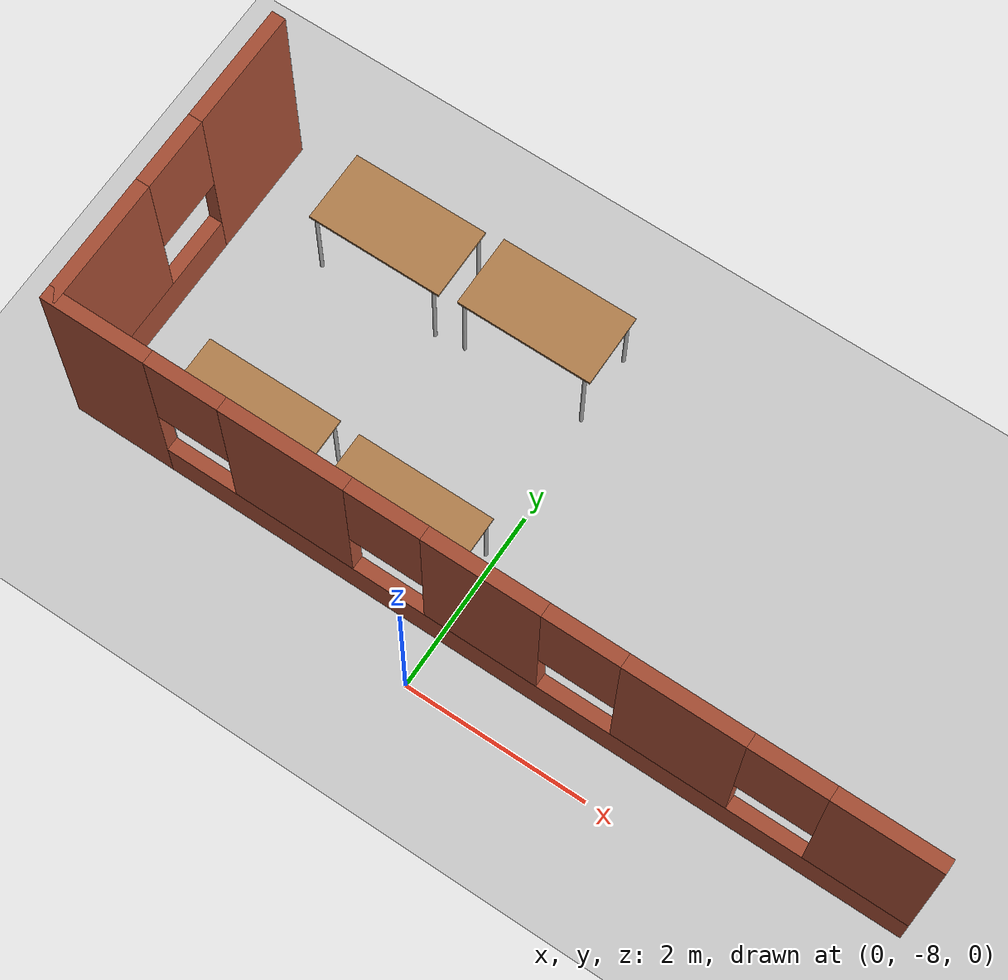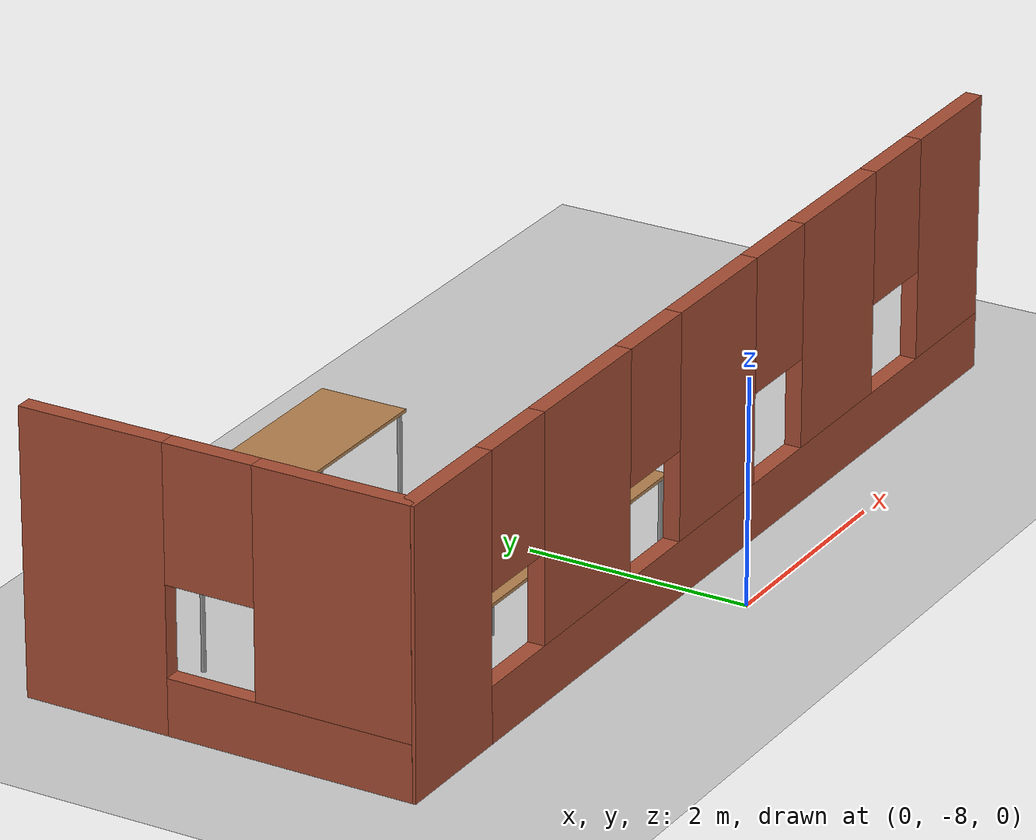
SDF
<sdf version="1.6">
 <world name="default">
  <model name="ground_plane">
   <static>1</static>
   <link name="link">
    <collision name="collision">
     <geometry><plane><normal>0 0 1</normal><size>100 100</size></plane></geometry>
     <surface>
      <contact><collide_bitmask>65535</collide_bitmask></contact>
      <friction><ode><mu>100</mu><mu2>50</mu2></ode></friction>
     </surface>
    </collision>
    <visual name="visual">
     <cast_shadows>0</cast_shadows>
     <geometry><plane><normal>0 0 1</normal><size>100 100</size></plane></geometry>
     <material>
      <script><uri>file://media/materials/scripts/gazebo.material</uri><name>Gazebo/Grey</name></script>
     </material>
    </visual>
   </link>
  </model>
  <model name="table_1">
   <static>1</static>
   <link name="link">
    <collision name="surface">
     <pose>0 0 1 0 -0 0</pose>
     <geometry><box><size>1.5 0.8 0.03</size></box></geometry>
     <surface><friction><ode><mu>0.6</mu><mu2>0.6</mu2></ode></friction></surface>
    </collision>
    <visual name="visual1">
     <pose>0 0 1 0 -0 0</pose>
     <geometry><box><size>1.5 0.8 0.03</size></box></geometry>
     <material>
      <script><uri>file://media/materials/scripts/gazebo.material</uri><name>Gazebo/Wood</name></script>
     </material>
    </visual>
    <collision name="front_left_leg">
     <pose>0.68 0.38 0.5 0 -0 0</pose>
     <geometry><cylinder><radius>0.02</radius><length>1</length></cylinder></geometry>
    </collision>
    <visual name="front_left_leg">
     <pose>0.68 0.38 0.5 0 -0 0</pose>
     <geometry><cylinder><radius>0.02</radius><length>1</length></cylinder></geometry>
     <material>
      <script><uri>file://media/materials/scripts/gazebo.material</uri><name>Gazebo/Grey</name></script>
     </material>
    </visual>
    <collision name="front_right_leg">
     <pose>0.68 -0.38 0.5 0 -0 0</pose>
     <geometry><cylinder><radius>0.02</radius><length>1</length></cylinder></geometry>
    </collision>
    <visual name="front_right_leg">
     <pose>0.68 -0.38 0.5 0 -0 0</pose>
     <geometry><cylinder><radius>0.02</radius><length>1</length></cylinder></geometry>
     <material>
      <script><uri>file://media/materials/scripts/gazebo.material</uri><name>Gazebo/Grey</name></script>
     </material>
    </visual>
    <collision name="back_right_leg">
     <pose>-0.68 -0.38 0.5 0 -0 0</pose>
     <geometry><cylinder><radius>0.02</radius><length>1</length></cylinder></geometry>
    </collision>
    <visual name="back_right_leg">
     <pose>-0.68 -0.38 0.5 0 -0 0</pose>
     <geometry><cylinder><radius>0.02</radius><length>1</length></cylinder></geometry>
     <material>
      <script><uri>file://media/materials/scripts/gazebo.material</uri><name>Gazebo/Grey</name></script>
     </material>
    </visual>
    <collision name="back_left_leg">
     <pose>-0.68 0.38 0.5 0 -0 0</pose>
     <geometry><cylinder><radius>0.02</radius><length>1</length></cylinder></geometry>
    </collision>
    <visual name="back_left_leg">
     <pose>-0.68 0.38 0.5 0 -0 0</pose>
     <geometry><cylinder><radius>0.02</radius><length>1</length></cylinder></geometry>
     <material>
      <script><uri>file://media/materials/scripts/gazebo.material</uri><name>Gazebo/Grey</name></script>
     </material>
    </visual>
   </link>
   <pose>-0.78676 -6.88535 0 0 -0 0</pose>
  </model>
  <model name="table_2">
   <static>1</static>
   <link name="link">
    <collision name="surface">
     <pose>0 0 1 0 -0 0</pose>
     <geometry><box><size>1.5 0.8 0.03</size></box></geometry>
     <surface><friction><ode><mu>0.6</mu><mu2>0.6</mu2></ode></friction></surface>
    </collision>
    <visual name="visual1">
     <pose>0 0 1 0 -0 0</pose>
     <geometry><box><size>1.5 0.8 0.03</size></box></geometry>
     <material>
      <script><uri>file://media/materials/scripts/gazebo.material</uri><name>Gazebo/Wood</name></script>
     </material>
    </visual>
    <collision name="front_left_leg">
     <pose>0.68 0.38 0.5 0 -0 0</pose>
     <geometry><cylinder><radius>0.02</radius><length>1</length></cylinder></geometry>
    </collision>
    <visual name="front_left_leg">
     <pose>0.68 0.38 0.5 0 -0 0</pose>
     <geometry><cylinder><radius>0.02</radius><length>1</length></cylinder></geometry>
     <material>
      <script><uri>file://media/materials/scripts/gazebo.material</uri><name>Gazebo/Grey</name></script>
     </material>
    </visual>
    <collision name="front_right_leg">
     <pose>0.68 -0.38 0.5 0 -0 0</pose>
     <geometry><cylinder><radius>0.02</radius><length>1</length></cylinder></geometry>
    </collision>
    <visual name="front_right_leg">
     <pose>0.68 -0.38 0.5 0 -0 0</pose>
     <geometry><cylinder><radius>0.02</radius><length>1</length></cylinder></geometry>
     <material>
      <script><uri>file://media/materials/scripts/gazebo.material</uri><name>Gazebo/Grey</name></script>
     </material>
    </visual>
    <collision name="back_right_leg">
     <pose>-0.68 -0.38 0.5 0 -0 0</pose>
     <geometry><cylinder><radius>0.02</radius><length>1</length></cylinder></geometry>
    </collision>
    <visual name="back_right_leg">
     <pose>-0.68 -0.38 0.5 0 -0 0</pose>
     <geometry><cylinder><radius>0.02</radius><length>1</length></cylinder></geometry>
     <material>
      <script><uri>file://media/materials/scripts/gazebo.material</uri><name>Gazebo/Grey</name></script>
     </material>
    </visual>
    <collision name="back_left_leg">
     <pose>-0.68 0.38 0.5 0 -0 0</pose>
     <geometry><cylinder><radius>0.02</radius><length>1</length></cylinder></geometry>
    </collision>
    <visual name="back_left_leg">
     <pose>-0.68 0.38 0.5 0 -0 0</pose>
     <geometry><cylinder><radius>0.02</radius><length>1</length></cylinder></geometry>
     <material>
      <script><uri>file://media/materials/scripts/gazebo.material</uri><name>Gazebo/Grey</name></script>
     </material>
    </visual>
   </link>
   <pose>-2.5066 -6.87223 0 0 -0 0</pose>
  </model>
  <model name="Building">
   <link name="Wall_0_clone">
    <pose>-4.53996 -4.60365 0 0 0 -1.5708</pose>
    <visual name="Wall_0_Visual_0">
     <pose>-1.09777 0 1.25 0 -0 0</pose>
     <geometry><box><size>1.30446 0.15 2.5</size></box></geometry>
     <material>
      <script><uri>file://media/materials/scripts/gazebo.material</uri><name>Gazebo/Bricks</name></script>
      <ambient>1 1 1 1</ambient>
      <shader type="pixel"/>
      <diffuse>1 1 1 1</diffuse>
      <specular>0.2 0.2 0.2 1</specular>
      <emissive>0 0 0 1</emissive>
     </material>
     <meta><layer>0</layer></meta>
    </visual>
    <visual name="Wall_0_Visual_2">
     <pose>1.05223 0 1.5 0 -0 0</pose>
     <geometry><box><size>1.39554 0.15 2</size></box></geometry>
     <material>
      <script><uri>file://media/materials/scripts/gazebo.material</uri><name>Gazebo/Bricks</name></script>
      <ambient>1 1 1 1</ambient>
      <shader type="pixel"/>
      <diffuse>1 1 1 1</diffuse>
      <specular>0.2 0.2 0.2 1</specular>
      <emissive>0 0 0 1</emissive>
     </material>
     <meta><layer>0</layer></meta>
    </visual>
    <visual name="Wall_0_Visual_1">
     <pose>0.652232 0 0.25 0 -0 0</pose>
     <geometry><box><size>2.19554 0.15 0.5</size></box></geometry>
     <material>
      <script><uri>file://media/materials/scripts/gazebo.material</uri><name>Gazebo/Bricks</name></script>
      <ambient>1 1 1 1</ambient>
      <shader type="pixel"/>
      <diffuse>1 1 1 1</diffuse>
      <specular>0.2 0.2 0.2 1</specular>
      <emissive>0 0 0 1</emissive>
     </material>
     <meta><layer>0</layer></meta>
    </visual>
    <visual name="Wall_0_Visual_3">
     <pose>-0.045536 0 1.9 0 -0 0</pose>
     <geometry><box><size>0.8 0.15 1.2</size></box></geometry>
     <material>
      <script><uri>file://media/materials/scripts/gazebo.material</uri><name>Gazebo/Bricks</name></script>
      <ambient>1 1 1 1</ambient>
      <shader type="pixel"/>
      <diffuse>1 1 1 1</diffuse>
      <specular>0.2 0.2 0.2 1</specular>
      <emissive>0 0 0 1</emissive>
     </material>
     <meta><layer>0</layer></meta>
    </visual>
    <collision name="Wall_0_Collision_1">
     <pose>0.652232 0 0.25 0 -0 0</pose>
     <geometry><box><size>2.19554 0.15 0.5</size></box></geometry>
     <surface>
      <friction>
       <ode><mu>1</mu><mu2>1</mu2><fdir1>0 0 0</fdir1><slip1>0</slip1><slip2>0</slip2></ode>
       <torsional>
        <coefficient>1</coefficient>
        <patch_radius>0</patch_radius>
        <surface_radius>0</surface_radius>
        <use_patch_radius>1</use_patch_radius>
        <ode><slip>0</slip></ode>
       </torsional>
      </friction>
      <bounce><restitution_coefficient>0</restitution_coefficient><threshold>1e+06</threshold></bounce>
      <contact>
       <collide_without_contact>0</collide_without_contact>
       <collide_without_contact_bitmask>1</collide_without_contact_bitmask>
       <collide_bitmask>1</collide_bitmask>
       <ode>
        <soft_cfm>0</soft_cfm>
        <soft_erp>0.2</soft_erp>
        <kp>1e+13</kp>
        <kd>1</kd>
        <max_vel>0.01</max_vel>
        <min_depth>0</min_depth>
       </ode>
       <bullet>
        <split_impulse>1</split_impulse>
        <split_impulse_penetration_threshold>-0.01</split_impulse_penetration_threshold>
        <soft_cfm>0</soft_cfm>
        <soft_erp>0.2</soft_erp>
        <kp>1e+13</kp>
        <kd>1</kd>
       </bullet>
      </contact>
     </surface>
    </collision>
    <collision name="Wall_0_Collision_0">
     <pose>-1.09777 0 1.25 0 -0 0</pose>
     <geometry><box><size>1.30446 0.15 2.5</size></box></geometry>
     <surface>
      <friction>
       <ode><mu>1</mu><mu2>1</mu2><fdir1>0 0 0</fdir1><slip1>0</slip1><slip2>0</slip2></ode>
       <torsional>
        <coefficient>1</coefficient>
        <patch_radius>0</patch_radius>
        <surface_radius>0</surface_radius>
        <use_patch_radius>1</use_patch_radius>
        <ode><slip>0</slip></ode>
       </torsional>
      </friction>
      <bounce><restitution_coefficient>0</restitution_coefficient><threshold>1e+06</threshold></bounce>
      <contact>
       <collide_without_contact>0</collide_without_contact>
       <collide_without_contact_bitmask>1</collide_without_contact_bitmask>
       <collide_bitmask>1</collide_bitmask>
       <ode>
        <soft_cfm>0</soft_cfm>
        <soft_erp>0.2</soft_erp>
        <kp>1e+13</kp>
        <kd>1</kd>
        <max_vel>0.01</max_vel>
        <min_depth>0</min_depth>
       </ode>
       <bullet>
        <split_impulse>1</split_impulse>
        <split_impulse_penetration_threshold>-0.01</split_impulse_penetration_threshold>
        <soft_cfm>0</soft_cfm>
        <soft_erp>0.2</soft_erp>
        <kp>1e+13</kp>
        <kd>1</kd>
       </bullet>
      </contact>
     </surface>
    </collision>
    <collision name="Wall_0_Collision_2">
     <pose>1.05223 0 1.5 0 -0 0</pose>
     <geometry><box><size>1.39554 0.15 2</size></box></geometry>
     <surface>
      <friction>
       <ode><mu>1</mu><mu2>1</mu2><fdir1>0 0 0</fdir1><slip1>0</slip1><slip2>0</slip2></ode>
       <torsional>
        <coefficient>1</coefficient>
        <patch_radius>0</patch_radius>
        <surface_radius>0</surface_radius>
        <use_patch_radius>1</use_patch_radius>
        <ode><slip>0</slip></ode>
       </torsional>
      </friction>
      <bounce><restitution_coefficient>0</restitution_coefficient><threshold>1e+06</threshold></bounce>
      <contact>
       <collide_without_contact>0</collide_without_contact>
       <collide_without_contact_bitmask>1</collide_without_contact_bitmask>
       <collide_bitmask>1</collide_bitmask>
       <ode>
        <soft_cfm>0</soft_cfm>
        <soft_erp>0.2</soft_erp>
        <kp>1e+13</kp>
        <kd>1</kd>
        <max_vel>0.01</max_vel>
        <min_depth>0</min_depth>
       </ode>
       <bullet>
        <split_impulse>1</split_impulse>
        <split_impulse_penetration_threshold>-0.01</split_impulse_penetration_threshold>
        <soft_cfm>0</soft_cfm>
        <soft_erp>0.2</soft_erp>
        <kp>1e+13</kp>
        <kd>1</kd>
       </bullet>
      </contact>
     </surface>
    </collision>
    <collision name="Wall_0_Collision_3">
     <pose>-0.045536 0 1.9 0 -0 0</pose>
     <geometry><box><size>0.8 0.15 1.2</size></box></geometry>
     <surface>
      <friction>
       <ode><mu>1</mu><mu2>1</mu2><fdir1>0 0 0</fdir1><slip1>0</slip1><slip2>0</slip2></ode>
       <torsional>
        <coefficient>1</coefficient>
        <patch_radius>0</patch_radius>
        <surface_radius>0</surface_radius>
        <use_patch_radius>1</use_patch_radius>
        <ode><slip>0</slip></ode>
       </torsional>
      </friction>
      <bounce><restitution_coefficient>0</restitution_coefficient><threshold>1e+06</threshold></bounce>
      <contact>
       <collide_without_contact>0</collide_without_contact>
       <collide_without_contact_bitmask>1</collide_without_contact_bitmask>
       <collide_bitmask>1</collide_bitmask>
       <ode>
        <soft_cfm>0</soft_cfm>
        <soft_erp>0.2</soft_erp>
        <kp>1e+13</kp>
        <kd>1</kd>
        <max_vel>0.01</max_vel>
        <min_depth>0</min_depth>
       </ode>
       <bullet>
        <split_impulse>1</split_impulse>
        <split_impulse_penetration_threshold>-0.01</split_impulse_penetration_threshold>
        <soft_cfm>0</soft_cfm>
        <soft_erp>0.2</soft_erp>
        <kp>1e+13</kp>
        <kd>1</kd>
       </bullet>
      </contact>
     </surface>
    </collision>
   </link>
   <link name="Wall_1">
    <pose>0.010523 -6.30946 0 0 -0 0</pose>
    <visual name="Wall_1_Visual_0">
     <pose>-4.05675 0 1.25 0 -0 0</pose>
     <geometry><box><size>1.1365 0.15 2.5</size></box></geometry>
     <material>
      <script><uri>file://media/materials/scripts/gazebo.material</uri><name>Gazebo/Bricks</name></script>
      <ambient>1 1 1 1</ambient>
      <shader type="pixel"/>
      <diffuse>1 1 1 1</diffuse>
      <specular>0.2 0.2 0.2 1</specular>
      <emissive>0 0 0 1</emissive>
     </material>
     <meta><layer>0</layer></meta>
    </visual>
    <visual name="Wall_1_Visual_1">
     <pose>0.568248 0 0.25 0 -0 0</pose>
     <geometry><box><size>8.1135 0.15 0.5</size></box></geometry>
     <material>
      <script><uri>file://media/materials/scripts/gazebo.material</uri><name>Gazebo/Bricks</name></script>
      <ambient>1 1 1 1</ambient>
      <shader type="pixel"/>
      <diffuse>1 1 1 1</diffuse>
      <specular>0.2 0.2 0.2 1</specular>
      <emissive>0 0 0 1</emissive>
     </material>
     <meta><layer>0</layer></meta>
    </visual>
    <visual name="Wall_1_Visual_2">
     <pose>-2.01945 0 1.5 0 -0 0</pose>
     <geometry><box><size>1.3381 0.15 2</size></box></geometry>
     <material>
      <script><uri>file://media/materials/scripts/gazebo.material</uri><name>Gazebo/Bricks</name></script>
      <ambient>1 1 1 1</ambient>
      <shader type="pixel"/>
      <diffuse>1 1 1 1</diffuse>
      <specular>0.2 0.2 0.2 1</specular>
      <emissive>0 0 0 1</emissive>
     </material>
     <meta><layer>0</layer></meta>
    </visual>
    <visual name="Wall_1_Visual_3">
     <pose>0.067744 0 1.5 0 -0 0</pose>
     <geometry><box><size>1.23629 0.15 2</size></box></geometry>
     <material>
      <script><uri>file://media/materials/scripts/gazebo.material</uri><name>Gazebo/Bricks</name></script>
      <ambient>1 1 1 1</ambient>
      <shader type="pixel"/>
      <diffuse>1 1 1 1</diffuse>
      <specular>0.2 0.2 0.2 1</specular>
      <emissive>0 0 0 1</emissive>
     </material>
     <meta><layer>0</layer></meta>
    </visual>
    <visual name="Wall_1_Visual_4">
     <pose>2.10403 0 1.5 0 -0 0</pose>
     <geometry><box><size>1.23629 0.15 2</size></box></geometry>
     <material>
      <script><uri>file://media/materials/scripts/gazebo.material</uri><name>Gazebo/Bricks</name></script>
      <ambient>1 1 1 1</ambient>
      <shader type="pixel"/>
      <diffuse>1 1 1 1</diffuse>
      <specular>0.2 0.2 0.2 1</specular>
      <emissive>0 0 0 1</emissive>
     </material>
     <meta><layer>0</layer></meta>
    </visual>
    <visual name="Wall_1_Visual_5">
     <pose>4.07359 0 1.5 0 -0 0</pose>
     <geometry><box><size>1.10282 0.15 2</size></box></geometry>
     <material>
      <script><uri>file://media/materials/scripts/gazebo.material</uri><name>Gazebo/Bricks</name></script>
      <ambient>1 1 1 1</ambient>
      <shader type="pixel"/>
      <diffuse>1 1 1 1</diffuse>
      <specular>0.2 0.2 0.2 1</specular>
      <emissive>0 0 0 1</emissive>
     </material>
     <meta><layer>0</layer></meta>
    </visual>
    <visual name="Wall_1_Visual_6">
     <pose>-3.0885 0 1.9 0 -0 0</pose>
     <geometry><box><size>0.8 0.15 1.2</size></box></geometry>
     <material>
      <script><uri>file://media/materials/scripts/gazebo.material</uri><name>Gazebo/Bricks</name></script>
      <ambient>1 1 1 1</ambient>
      <shader type="pixel"/>
      <diffuse>1 1 1 1</diffuse>
      <specular>0.2 0.2 0.2 1</specular>
      <emissive>0 0 0 1</emissive>
     </material>
     <meta><layer>0</layer></meta>
    </visual>
    <visual name="Wall_1_Visual_7">
     <pose>-0.950401 0 1.9 0 -0 0</pose>
     <geometry><box><size>0.8 0.15 1.2</size></box></geometry>
     <material>
      <script><uri>file://media/materials/scripts/gazebo.material</uri><name>Gazebo/Bricks</name></script>
      <ambient>1 1 1 1</ambient>
      <shader type="pixel"/>
      <diffuse>1 1 1 1</diffuse>
      <specular>0.2 0.2 0.2 1</specular>
      <emissive>0 0 0 1</emissive>
     </material>
     <meta><layer>0</layer></meta>
    </visual>
    <visual name="Wall_1_Visual_8">
     <pose>1.08589 0 1.9 0 -0 0</pose>
     <geometry><box><size>0.8 0.15 1.2</size></box></geometry>
     <material>
      <script><uri>file://media/materials/scripts/gazebo.material</uri><name>Gazebo/Bricks</name></script>
      <ambient>1 1 1 1</ambient>
      <shader type="pixel"/>
      <diffuse>1 1 1 1</diffuse>
      <specular>0.2 0.2 0.2 1</specular>
      <emissive>0 0 0 1</emissive>
     </material>
     <meta><layer>0</layer></meta>
    </visual>
    <visual name="Wall_1_Visual_9">
     <pose>3.12218 0 1.9 0 -0 0</pose>
     <geometry><box><size>0.8 0.15 1.2</size></box></geometry>
     <material>
      <script><uri>file://media/materials/scripts/gazebo.material</uri><name>Gazebo/Bricks</name></script>
      <ambient>1 1 1 1</ambient>
      <shader type="pixel"/>
      <diffuse>1 1 1 1</diffuse>
      <specular>0.2 0.2 0.2 1</specular>
      <emissive>0 0 0 1</emissive>
     </material>
     <meta><layer>0</layer></meta>
    </visual>
    <collision name="Wall_1_Collision_0">
     <pose>-4.05675 0 1.25 0 -0 0</pose>
     <geometry><box><size>1.1365 0.15 2.5</size></box></geometry>
     <surface>
      <friction>
       <ode><mu>1</mu><mu2>1</mu2><fdir1>0 0 0</fdir1><slip1>0</slip1><slip2>0</slip2></ode>
       <torsional>
        <coefficient>1</coefficient>
        <patch_radius>0</patch_radius>
        <surface_radius>0</surface_radius>
        <use_patch_radius>1</use_patch_radius>
        <ode><slip>0</slip></ode>
       </torsional>
      </friction>
      <bounce><restitution_coefficient>0</restitution_coefficient><threshold>1e+06</threshold></bounce>
      <contact>
       <collide_without_contact>0</collide_without_contact>
       <collide_without_contact_bitmask>1</collide_without_contact_bitmask>
       <collide_bitmask>1</collide_bitmask>
       <ode>
        <soft_cfm>0</soft_cfm>
        <soft_erp>0.2</soft_erp>
        <kp>1e+13</kp>
        <kd>1</kd>
        <max_vel>0.01</max_vel>
        <min_depth>0</min_depth>
       </ode>
       <bullet>
        <split_impulse>1</split_impulse>
        <split_impulse_penetration_threshold>-0.01</split_impulse_penetration_threshold>
        <soft_cfm>0</soft_cfm>
        <soft_erp>0.2</soft_erp>
        <kp>1e+13</kp>
        <kd>1</kd>
       </bullet>
      </contact>
     </surface>
    </collision>
    <collision name="Wall_1_Collision_1">
     <pose>0.568248 0 0.25 0 -0 0</pose>
     <geometry><box><size>8.1135 0.15 0.5</size></box></geometry>
     <surface>
      <friction>
       <ode><mu>1</mu><mu2>1</mu2><fdir1>0 0 0</fdir1><slip1>0</slip1><slip2>0</slip2></ode>
       <torsional>
        <coefficient>1</coefficient>
        <patch_radius>0</patch_radius>
        <surface_radius>0</surface_radius>
        <use_patch_radius>1</use_patch_radius>
        <ode><slip>0</slip></ode>
       </torsional>
      </friction>
      <bounce><restitution_coefficient>0</restitution_coefficient><threshold>1e+06</threshold></bounce>
      <contact>
       <collide_without_contact>0</collide_without_contact>
       <collide_without_contact_bitmask>1</collide_without_contact_bitmask>
       <collide_bitmask>1</collide_bitmask>
       <ode>
        <soft_cfm>0</soft_cfm>
        <soft_erp>0.2</soft_erp>
        <kp>1e+13</kp>
        <kd>1</kd>
        <max_vel>0.01</max_vel>
        <min_depth>0</min_depth>
       </ode>
       <bullet>
        <split_impulse>1</split_impulse>
        <split_impulse_penetration_threshold>-0.01</split_impulse_penetration_threshold>
        <soft_cfm>0</soft_cfm>
        <soft_erp>0.2</soft_erp>
        <kp>1e+13</kp>
        <kd>1</kd>
       </bullet>
      </contact>
     </surface>
    </collision>
    <collision name="Wall_1_Collision_2">
     <pose>-2.01945 0 1.5 0 -0 0</pose>
     <geometry><box><size>1.3381 0.15 2</size></box></geometry>
     <surface>
      <friction>
       <ode><mu>1</mu><mu2>1</mu2><fdir1>0 0 0</fdir1><slip1>0</slip1><slip2>0</slip2></ode>
       <torsional>
        <coefficient>1</coefficient>
        <patch_radius>0</patch_radius>
        <surface_radius>0</surface_radius>
        <use_patch_radius>1</use_patch_radius>
        <ode><slip>0</slip></ode>
       </torsional>
      </friction>
      <bounce><restitution_coefficient>0</restitution_coefficient><threshold>1e+06</threshold></bounce>
      <contact>
       <collide_without_contact>0</collide_without_contact>
       <collide_without_contact_bitmask>1</collide_without_contact_bitmask>
       <collide_bitmask>1</collide_bitmask>
       <ode>
        <soft_cfm>0</soft_cfm>
        <soft_erp>0.2</soft_erp>
        <kp>1e+13</kp>
        <kd>1</kd>
        <max_vel>0.01</max_vel>
        <min_depth>0</min_depth>
       </ode>
       <bullet>
        <split_impulse>1</split_impulse>
        <split_impulse_penetration_threshold>-0.01</split_impulse_penetration_threshold>
        <soft_cfm>0</soft_cfm>
        <soft_erp>0.2</soft_erp>
        <kp>1e+13</kp>
        <kd>1</kd>
       </bullet>
      </contact>
     </surface>
    </collision>
    <collision name="Wall_1_Collision_3">
     <pose>0.067744 0 1.5 0 -0 0</pose>
     <geometry><box><size>1.23629 0.15 2</size></box></geometry>
     <surface>
      <friction>
       <ode><mu>1</mu><mu2>1</mu2><fdir1>0 0 0</fdir1><slip1>0</slip1><slip2>0</slip2></ode>
       <torsional>
        <coefficient>1</coefficient>
        <patch_radius>0</patch_radius>
        <surface_radius>0</surface_radius>
        <use_patch_radius>1</use_patch_radius>
        <ode><slip>0</slip></ode>
       </torsional>
      </friction>
      <bounce><restitution_coefficient>0</restitution_coefficient><threshold>1e+06</threshold></bounce>
      <contact>
       <collide_without_contact>0</collide_without_contact>
       <collide_without_contact_bitmask>1</collide_without_contact_bitmask>
       <collide_bitmask>1</collide_bitmask>
       <ode>
        <soft_cfm>0</soft_cfm>
        <soft_erp>0.2</soft_erp>
        <kp>1e+13</kp>
        <kd>1</kd>
        <max_vel>0.01</max_vel>
        <min_depth>0</min_depth>
       </ode>
       <bullet>
        <split_impulse>1</split_impulse>
        <split_impulse_penetration_threshold>-0.01</split_impulse_penetration_threshold>
        <soft_cfm>0</soft_cfm>
        <soft_erp>0.2</soft_erp>
        <kp>1e+13</kp>
        <kd>1</kd>
       </bullet>
      </contact>
     </surface>
    </collision>
    <collision name="Wall_1_Collision_4">
     <pose>2.10403 0 1.5 0 -0 0</pose>
     <geometry><box><size>1.23629 0.15 2</size></box></geometry>
     <surface>
      <friction>
       <ode><mu>1</mu><mu2>1</mu2><fdir1>0 0 0</fdir1><slip1>0</slip1><slip2>0</slip2></ode>
       <torsional>
        <coefficient>1</coefficient>
        <patch_radius>0</patch_radius>
        <surface_radius>0</surface_radius>
        <use_patch_radius>1</use_patch_radius>
        <ode><slip>0</slip></ode>
       </torsional>
      </friction>
      <bounce><restitution_coefficient>0</restitution_coefficient><threshold>1e+06</threshold></bounce>
      <contact>
       <collide_without_contact>0</collide_without_contact>
       <collide_without_contact_bitmask>1</collide_without_contact_bitmask>
       <collide_bitmask>1</collide_bitmask>
       <ode>
        <soft_cfm>0</soft_cfm>
        <soft_erp>0.2</soft_erp>
        <kp>1e+13</kp>
        <kd>1</kd>
        <max_vel>0.01</max_vel>
        <min_depth>0</min_depth>
       </ode>
       <bullet>
        <split_impulse>1</split_impulse>
        <split_impulse_penetration_threshold>-0.01</split_impulse_penetration_threshold>
        <soft_cfm>0</soft_cfm>
        <soft_erp>0.2</soft_erp>
        <kp>1e+13</kp>
        <kd>1</kd>
       </bullet>
      </contact>
     </surface>
    </collision>
    <collision name="Wall_1_Collision_5">
     <pose>4.07359 0 1.5 0 -0 0</pose>
     <geometry><box><size>1.10282 0.15 2</size></box></geometry>
     <surface>
      <friction>
       <ode><mu>1</mu><mu2>1</mu2><fdir1>0 0 0</fdir1><slip1>0</slip1><slip2>0</slip2></ode>
       <torsional>
        <coefficient>1</coefficient>
        <patch_radius>0</patch_radius>
        <surface_radius>0</surface_radius>
        <use_patch_radius>1</use_patch_radius>
        <ode><slip>0</slip></ode>
       </torsional>
      </friction>
      <bounce><restitution_coefficient>0</restitution_coefficient><threshold>1e+06</threshold></bounce>
      <contact>
       <collide_without_contact>0</collide_without_contact>
       <collide_without_contact_bitmask>1</collide_without_contact_bitmask>
       <collide_bitmask>1</collide_bitmask>
       <ode>
        <soft_cfm>0</soft_cfm>
        <soft_erp>0.2</soft_erp>
        <kp>1e+13</kp>
        <kd>1</kd>
        <max_vel>0.01</max_vel>
        <min_depth>0</min_depth>
       </ode>
       <bullet>
        <split_impulse>1</split_impulse>
        <split_impulse_penetration_threshold>-0.01</split_impulse_penetration_threshold>
        <soft_cfm>0</soft_cfm>
        <soft_erp>0.2</soft_erp>
        <kp>1e+13</kp>
        <kd>1</kd>
       </bullet>
      </contact>
     </surface>
    </collision>
    <collision name="Wall_1_Collision_6">
     <pose>-3.0885 0 1.9 0 -0 0</pose>
     <geometry><box><size>0.8 0.15 1.2</size></box></geometry>
     <surface>
      <friction>
       <ode><mu>1</mu><mu2>1</mu2><fdir1>0 0 0</fdir1><slip1>0</slip1><slip2>0</slip2></ode>
       <torsional>
        <coefficient>1</coefficient>
        <patch_radius>0</patch_radius>
        <surface_radius>0</surface_radius>
        <use_patch_radius>1</use_patch_radius>
        <ode><slip>0</slip></ode>
       </torsional>
      </friction>
      <bounce><restitution_coefficient>0</restitution_coefficient><threshold>1e+06</threshold></bounce>
      <contact>
       <collide_without_contact>0</collide_without_contact>
       <collide_without_contact_bitmask>1</collide_without_contact_bitmask>
       <collide_bitmask>1</collide_bitmask>
       <ode>
        <soft_cfm>0</soft_cfm>
        <soft_erp>0.2</soft_erp>
        <kp>1e+13</kp>
        <kd>1</kd>
        <max_vel>0.01</max_vel>
        <min_depth>0</min_depth>
       </ode>
       <bullet>
        <split_impulse>1</split_impulse>
        <split_impulse_penetration_threshold>-0.01</split_impulse_penetration_threshold>
        <soft_cfm>0</soft_cfm>
        <soft_erp>0.2</soft_erp>
        <kp>1e+13</kp>
        <kd>1</kd>
       </bullet>
      </contact>
     </surface>
    </collision>
    <collision name="Wall_1_Collision_7">
     <pose>-0.950401 0 1.9 0 -0 0</pose>
     <geometry><box><size>0.8 0.15 1.2</size></box></geometry>
     <surface>
      <friction>
       <ode><mu>1</mu><mu2>1</mu2><fdir1>0 0 0</fdir1><slip1>0</slip1><slip2>0</slip2></ode>
       <torsional>
        <coefficient>1</coefficient>
        <patch_radius>0</patch_radius>
        <surface_radius>0</surface_radius>
        <use_patch_radius>1</use_patch_radius>
        <ode><slip>0</slip></ode>
       </torsional>
      </friction>
      <bounce><restitution_coefficient>0</restitution_coefficient><threshold>1e+06</threshold></bounce>
      <contact>
       <collide_without_contact>0</collide_without_contact>
       <collide_without_contact_bitmask>1</collide_without_contact_bitmask>
       <collide_bitmask>1</collide_bitmask>
       <ode>
        <soft_cfm>0</soft_cfm>
        <soft_erp>0.2</soft_erp>
        <kp>1e+13</kp>
        <kd>1</kd>
        <max_vel>0.01</max_vel>
        <min_depth>0</min_depth>
       </ode>
       <bullet>
        <split_impulse>1</split_impulse>
        <split_impulse_penetration_threshold>-0.01</split_impulse_penetration_threshold>
        <soft_cfm>0</soft_cfm>
        <soft_erp>0.2</soft_erp>
        <kp>1e+13</kp>
        <kd>1</kd>
       </bullet>
      </contact>
     </surface>
    </collision>
    <collision name="Wall_1_Collision_9">
     <pose>3.12218 0 1.9 0 -0 0</pose>
     <geometry><box><size>0.8 0.15 1.2</size></box></geometry>
     <surface>
      <friction>
       <ode><mu>1</mu><mu2>1</mu2><fdir1>0 0 0</fdir1><slip1>0</slip1><slip2>0</slip2></ode>
       <torsional>
        <coefficient>1</coefficient>
        <patch_radius>0</patch_radius>
        <surface_radius>0</surface_radius>
        <use_patch_radius>1</use_patch_radius>
        <ode><slip>0</slip></ode>
       </torsional>
      </friction>
      <bounce><restitution_coefficient>0</restitution_coefficient><threshold>1e+06</threshold></bounce>
      <contact>
       <collide_without_contact>0</collide_without_contact>
       <collide_without_contact_bitmask>1</collide_without_contact_bitmask>
       <collide_bitmask>1</collide_bitmask>
       <ode>
        <soft_cfm>0</soft_cfm>
        <soft_erp>0.2</soft_erp>
        <kp>1e+13</kp>
        <kd>1</kd>
        <max_vel>0.01</max_vel>
        <min_depth>0</min_depth>
       </ode>
       <bullet>
        <split_impulse>1</split_impulse>
        <split_impulse_penetration_threshold>-0.01</split_impulse_penetration_threshold>
        <soft_cfm>0</soft_cfm>
        <soft_erp>0.2</soft_erp>
        <kp>1e+13</kp>
        <kd>1</kd>
       </bullet>
      </contact>
     </surface>
    </collision>
    <collision name="Wall_1_Collision_8">
     <pose>1.08589 0 1.9 0 -0 0</pose>
     <geometry><box><size>0.8 0.15 1.2</size></box></geometry>
     <surface>
      <friction>
       <ode><mu>1</mu><mu2>1</mu2><fdir1>0 0 0</fdir1><slip1>0</slip1><slip2>0</slip2></ode>
       <torsional>
        <coefficient>1</coefficient>
        <patch_radius>0</patch_radius>
        <surface_radius>0</surface_radius>
        <use_patch_radius>1</use_patch_radius>
        <ode><slip>0</slip></ode>
       </torsional>
      </friction>
      <bounce><restitution_coefficient>0</restitution_coefficient><threshold>1e+06</threshold></bounce>
      <contact>
       <collide_without_contact>0</collide_without_contact>
       <collide_without_contact_bitmask>1</collide_without_contact_bitmask>
       <collide_bitmask>1</collide_bitmask>
       <ode>
        <soft_cfm>0</soft_cfm>
        <soft_erp>0.2</soft_erp>
        <kp>1e+13</kp>
        <kd>1</kd>
        <max_vel>0.01</max_vel>
        <min_depth>0</min_depth>
       </ode>
       <bullet>
        <split_impulse>1</split_impulse>
        <split_impulse_penetration_threshold>-0.01</split_impulse_penetration_threshold>
        <soft_cfm>0</soft_cfm>
        <soft_erp>0.2</soft_erp>
        <kp>1e+13</kp>
        <kd>1</kd>
       </bullet>
      </contact>
     </surface>
    </collision>
   </link>
   <static>1</static>
   <pose>0.39 -1.08 0 0 -0 0</pose>
  </model>
  <model name="table_clone">
   <static>1</static>
   <link name="link">
    <collision name="surface">
     <pose>0 0 1 0 -0 0</pose>
     <geometry><box><size>1.5 0.8 0.03</size></box></geometry>
     <surface><friction><ode><mu>0.6</mu><mu2>0.6</mu2></ode></friction></surface>
    </collision>
    <visual name="visual1">
     <pose>0 0 1 0 -0 0</pose>
     <geometry><box><size>1.5 0.8 0.03</size></box></geometry>
     <material>
      <script><uri>file://media/materials/scripts/gazebo.material</uri><name>Gazebo/Wood</name></script>
     </material>
    </visual>
    <collision name="front_left_leg">
     <pose>0.68 0.38 0.5 0 -0 0</pose>
     <geometry><cylinder><radius>0.02</radius><length>1</length></cylinder></geometry>
    </collision>
    <visual name="front_left_leg">
     <pose>0.68 0.38 0.5 0 -0 0</pose>
     <geometry><cylinder><radius>0.02</radius><length>1</length></cylinder></geometry>
     <material>
      <script><uri>file://media/materials/scripts/gazebo.material</uri><name>Gazebo/Grey</name></script>
     </material>
    </visual>
    <collision name="front_right_leg">
     <pose>0.68 -0.38 0.5 0 -0 0</pose>
     <geometry><cylinder><radius>0.02</radius><length>1</length></cylinder></geometry>
    </collision>
    <visual name="front_right_leg">
     <pose>0.68 -0.38 0.5 0 -0 0</pose>
     <geometry><cylinder><radius>0.02</radius><length>1</length></cylinder></geometry>
     <material>
      <script><uri>file://media/materials/scripts/gazebo.material</uri><name>Gazebo/Grey</name></script>
     </material>
    </visual>
    <collision name="back_right_leg">
     <pose>-0.68 -0.38 0.5 0 -0 0</pose>
     <geometry><cylinder><radius>0.02</radius><length>1</length></cylinder></geometry>
    </collision>
    <visual name="back_right_leg">
     <pose>-0.68 -0.38 0.5 0 -0 0</pose>
     <geometry><cylinder><radius>0.02</radius><length>1</length></cylinder></geometry>
     <material>
      <script><uri>file://media/materials/scripts/gazebo.material</uri><name>Gazebo/Grey</name></script>
     </material>
    </visual>
    <collision name="back_left_leg">
     <pose>-0.68 0.38 0.5 0 -0 0</pose>
     <geometry><cylinder><radius>0.02</radius><length>1</length></cylinder></geometry>
    </collision>
    <visual name="back_left_leg">
     <pose>-0.68 0.38 0.5 0 -0 0</pose>
     <geometry><cylinder><radius>0.02</radius><length>1</length></cylinder></geometry>
     <material>
      <script><uri>file://media/materials/scripts/gazebo.material</uri><name>Gazebo/Grey</name></script>
     </material>
    </visual>
   </link>
   <pose>-0.795045 -4.45944 0 0 -0 0</pose>
  </model>
  <model name="table_clone_clone">
   <static>1</static>
   <link name="link">
    <collision name="surface">
     <pose>0 0 1 0 -0 0</pose>
     <geometry><box><size>1.5 0.8 0.03</size></box></geometry>
     <surface><friction><ode><mu>0.6</mu><mu2>0.6</mu2></ode></friction></surface>
    </collision>
    <visual name="visual1">
     <pose>0 0 1 0 -0 0</pose>
     <geometry><box><size>1.5 0.8 0.03</size></box></geometry>
     <material>
      <script><uri>file://media/materials/scripts/gazebo.material</uri><name>Gazebo/Wood</name></script>
     </material>
    </visual>
    <collision name="front_left_leg">
     <pose>0.68 0.38 0.5 0 -0 0</pose>
     <geometry><cylinder><radius>0.02</radius><length>1</length></cylinder></geometry>
    </collision>
    <visual name="front_left_leg">
     <pose>0.68 0.38 0.5 0 -0 0</pose>
     <geometry><cylinder><radius>0.02</radius><length>1</length></cylinder></geometry>
     <material>
      <script><uri>file://media/materials/scripts/gazebo.material</uri><name>Gazebo/Grey</name></script>
     </material>
    </visual>
    <collision name="front_right_leg">
     <pose>0.68 -0.38 0.5 0 -0 0</pose>
     <geometry><cylinder><radius>0.02</radius><length>1</length></cylinder></geometry>
    </collision>
    <visual name="front_right_leg">
     <pose>0.68 -0.38 0.5 0 -0 0</pose>
     <geometry><cylinder><radius>0.02</radius><length>1</length></cylinder></geometry>
     <material>
      <script><uri>file://media/materials/scripts/gazebo.material</uri><name>Gazebo/Grey</name></script>
     </material>
    </visual>
    <collision name="back_right_leg">
     <pose>-0.68 -0.38 0.5 0 -0 0</pose>
     <geometry><cylinder><radius>0.02</radius><length>1</length></cylinder></geometry>
    </collision>
    <visual name="back_right_leg">
     <pose>-0.68 -0.38 0.5 0 -0 0</pose>
     <geometry><cylinder><radius>0.02</radius><length>1</length></cylinder></geometry>
     <material>
      <script><uri>file://media/materials/scripts/gazebo.material</uri><name>Gazebo/Grey</name></script>
     </material>
    </visual>
    <collision name="back_left_leg">
     <pose>-0.68 0.38 0.5 0 -0 0</pose>
     <geometry><cylinder><radius>0.02</radius><length>1</length></cylinder></geometry>
    </collision>
    <visual name="back_left_leg">
     <pose>-0.68 0.38 0.5 0 -0 0</pose>
     <geometry><cylinder><radius>0.02</radius><length>1</length></cylinder></geometry>
     <material>
      <script><uri>file://media/materials/scripts/gazebo.material</uri><name>Gazebo/Grey</name></script>
     </material>
    </visual>
   </link>
   <pose>-2.47811 -4.50135 0 0 -0 0</pose>
  </model>
 </world>
</sdf>
